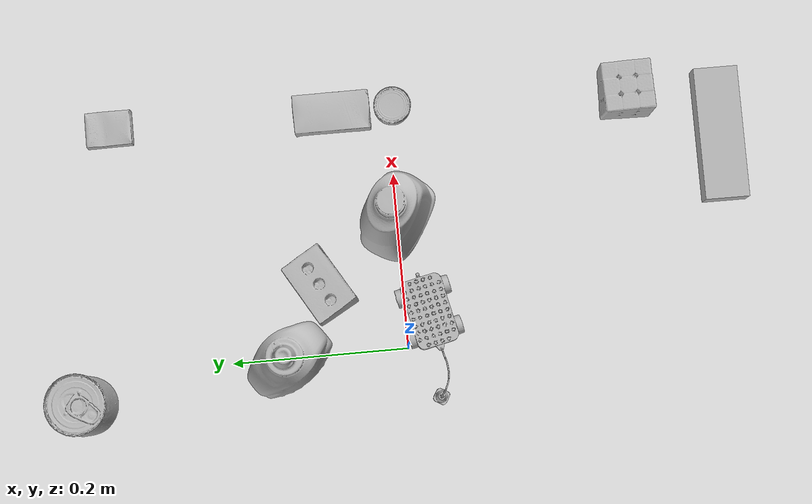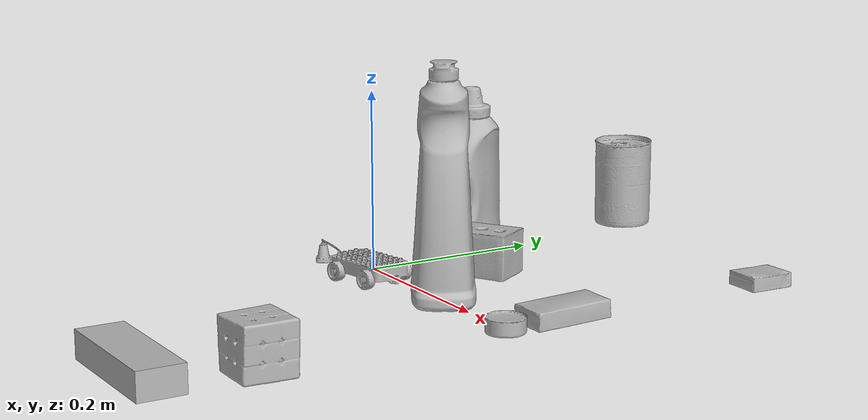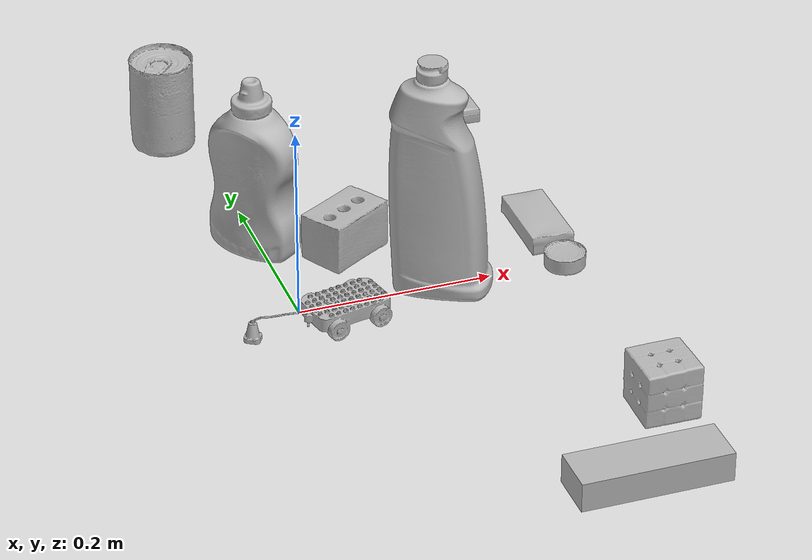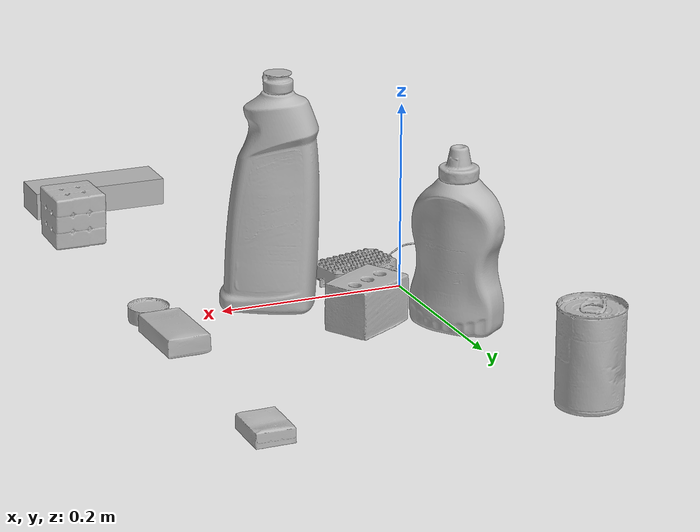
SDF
<sdf version="1.4">
  <world name="default">
    <light name="light1" type="point">
      <pose>0 0 1 0 0 0</pose>
      <diffuse>3 3 3 1</diffuse>
      <specular>3 3 3 1</specular>
    </light>
    <light name="light2" type="point">
      <pose>0 0.5 2 0 0 0</pose>
      <diffuse>1 1 1 1</diffuse>
      <specular>1 1 1 1</specular>
    </light>
    <light name="light3" type="point">
      <pose>0 0.5 2 0 0 0</pose>
      <diffuse>3 3 3 1</diffuse>
      <specular>3 3 3 1</specular>
    </light>
    <scene>
      <ambient>0.7 0.7 0.7</ambient>
    </scene>
    <model name="bottle1">
      <link name="link_bottle1">
        <collision name="default">
          <geometry>
            <mesh>
              <uri>model://bleach_cleanser/collision_meshes/collision.obj</uri>
              <scale>1.0 1.0 1.0</scale>
            </mesh>
          </geometry>
          <surface>
            <friction>
              <ode>
                <mu>0.5</mu>
                <mu2>0.5</mu2>
              </ode>
            </friction>
          <contact>
        <ode>
            <max_vel>0</max_vel>
            <min_depth>0.0001</min_depth>
            <kp>1e8</kp>
        </ode>
    </contact></surface>
        </collision>
        <visual name="default">
          <geometry>
            <mesh>
              <uri>model://bleach_cleanser/visual_meshes/visual.dae</uri>
              <scale>1.0 1.0 1.0</scale>
            </mesh>
          </geometry>
        </visual>
        <inertial>
          <mass>1.2697166204452515</mass>
          <pose>0.00012193183647468686 0.003783883061259985 -0.02442161738872528 -0.07381670616315505 0.00042011510954057825 -0.0068750724928957506</pose>
          <inertia>
            <ixx>0.0061798943</ixx>
            <iyy>0.0057587572</iyy>
            <izz>0.0010566014</izz>
            <ixy>0</ixy>
            <ixz>0</ixz>
            <iyz>0</iyz>
          </inertia>
        </inertial>
      </link>
      <pose>0.1481686681509018 0.0014341393252834678 0.12602798640727997 -0.004693066469135444 0.006419509482709518 1.0716404376568849</pose>
    </model>
    <model name="bottle2">
      <link name="link_bottle2">
        <collision name="default">
          <geometry>
            <mesh>
              <uri>model://mustard_bottle/collision_meshes/collision.obj</uri>
              <scale>1.0 1.0 1.0</scale>
            </mesh>
          </geometry>
          <surface>
            <friction>
              <ode>
                <mu>0.5</mu>
                <mu2>0.5</mu2>
              </ode>
            </friction>
          <contact>
        <ode>
            <max_vel>0</max_vel>
            <min_depth>0.0001</min_depth>
            <kp>1e8</kp>
        </ode>
    </contact></surface>
        </collision>
        <visual name="default">
          <geometry>
            <mesh>
              <uri>model://mustard_bottle/visual_meshes/visual.dae</uri>
              <scale>1.0 1.0 1.0</scale>
            </mesh>
          </geometry>
        </visual>
        <inertial>
          <mass>0.7653017640113831</mass>
          <pose>0.000503245391882956 -0.00015647402324248105 -0.01747579500079155 0.0004182327658992807 0.0009465785893850277 0.024853714910462506</pose>
          <inertia>
            <ixx>0.0021251384</ixx>
            <iyy>0.0018646289</iyy>
            <izz>0.0005600813</izz>
            <ixy>0</ixy>
            <ixz>0</ixz>
            <iyz>0</iyz>
          </inertia>
        </inertial>
      </link>
      <pose>-0.003127101808786392 0.13145193457603455 0.09615200757980347 1.540661075711656e-05 1.6690452412187656e-05 -2.529059461160258</pose>
    </model>
    <model name="toy1">
      <link name="link_toy1">
        <collision name="default">
          <geometry>
            <mesh>
              <uri>model://g_lego_duplo/collision_meshes/collision.obj</uri>
              <scale>0.5 0.5 0.5</scale>
            </mesh>
          </geometry>
          <surface>
            <friction>
              <ode>
                <mu>0.5</mu>
                <mu2>0.5</mu2>
              </ode>
            </friction>
          <contact>
        <ode>
            <max_vel>0</max_vel>
            <min_depth>0.0001</min_depth>
            <kp>1e8</kp>
        </ode>
    </contact></surface>
        </collision>
        <visual name="default">
          <geometry>
            <mesh>
              <uri>model://g_lego_duplo/visual_meshes/visual.dae</uri>
              <scale>0.5 0.5 0.5</scale>
            </mesh>
          </geometry>
        </visual>
        <inertial>
          <mass>0.058442164212465286</mass>
          <pose>-0.025023842230439186 0.0008777315961197019 0.0019403378246352077 0.010962970283690966 0.0381082459421261 -0.09653034831594848</pose>
          <inertia>
            <ixx>2.1170836e-05</ixx>
            <iyy>6.4006235e-05</iyy>
            <izz>8.007422e-05</izz>
            <ixy>0</ixy>
            <ixz>0</ixz>
            <iyz>0</iyz>
          </inertia>
        </inertial>
      </link>
      <pose>0.009738078340888023 -0.031526051461696625 0.014839578419923782 -0.0009016253654616168 -0.005092936925250502 -2.9245266449620253</pose>
    </model>
    <model name="toy2">
      <link name="link_toy2">
        <collision name="default">
          <geometry>
            <mesh>
              <uri>model://foam_brick/collision_meshes/collision.obj</uri>
              <scale>1.0 1.0 1.0</scale>
            </mesh>
          </geometry>
          <surface>
            <friction>
              <ode>
                <mu>0.5</mu>
                <mu2>0.5</mu2>
              </ode>
            </friction>
          <contact>
        <ode>
            <max_vel>0</max_vel>
            <min_depth>0.0001</min_depth>
            <kp>1e8</kp>
        </ode>
    </contact></surface>
        </collision>
        <visual name="default">
          <geometry>
            <mesh>
              <uri>model://foam_brick/visual_meshes/visual.dae</uri>
              <scale>1.0 1.0 1.0</scale>
            </mesh>
          </geometry>
        </visual>
        <inertial>
          <mass>0.20487983524799347</mass>
          <pose>-0.0002522472059354186 0.0003458437859080732 -0.0002532101352699101 -0.2940200921298176 0.01727444945267686 -0.0007449878655710941</pose>
          <inertia>
            <ixx>8.9495355e-05</ixx>
            <iyy>0.0001428839</iyy>
            <izz>0.00014469978</izz>
            <ixy>0</ixy>
            <ixz>0</ixz>
            <iyz>0</iyz>
          </inertia>
        </inertial>
      </link>
      <pose>0.0785360112786293 0.09331780672073364 0.025922808796167374 0.013416822060428279 0.0041529658039680785 -2.6014903796233493</pose>
    </model>
    <model name="can1">
      <link name="link_can1">
        <collision name="default">
          <geometry>
            <mesh>
              <uri>model://tuna_fish_can/collision_meshes/collision.obj</uri>
              <scale>0.5 0.5 0.5</scale>
            </mesh>
          </geometry>
          <surface>
            <friction>
              <ode>
                <mu>0.5</mu>
                <mu2>0.5</mu2>
              </ode>
            </friction>
          <contact>
        <ode>
            <max_vel>0</max_vel>
            <min_depth>0.0001</min_depth>
            <kp>1e8</kp>
        </ode>
    </contact></surface>
        </collision>
        <visual name="default">
          <geometry>
            <mesh>
              <uri>model://tuna_fish_can/visual_meshes/visual.dae</uri>
              <scale>0.5 0.5 0.5</scale>
            </mesh>
          </geometry>
        </visual>
        <inertial>
          <mass>0.012491201050579548</mass>
          <pose>-2.036202567978762e-05 -7.256427124957554e-06 -0.0005269025568850338 -0.0017944782936896576 0.0001716245920406042 0.24054207470378652</pose>
          <inertia>
            <ixx>1.6888293e-06</ixx>
            <iyy>1.6817903e-06</iyy>
            <izz>2.889828e-06</izz>
            <ixy>0</ixy>
            <ixz>0</ixz>
            <iyz>0</iyz>
          </inertia>
        </inertial>
      </link>
      <pose>0.2783103883266449 -0.005455142818391323 0.008520003408193588 -6.441381476845636e-09 -2.00533677970357e-08 -1.1919792792915485</pose>
    </model>
    <model name="can2">
      <link name="link_can2">
        <collision name="default">
          <geometry>
            <mesh>
              <uri>model://tomato_soup_can/collision_meshes/collision.obj</uri>
              <scale>1.0 1.0 1.0</scale>
            </mesh>
          </geometry>
          <surface>
            <friction>
              <ode>
                <mu>0.5</mu>
                <mu2>0.5</mu2>
              </ode>
            </friction>
          <contact>
        <ode>
            <max_vel>0</max_vel>
            <min_depth>0.0001</min_depth>
            <kp>1e8</kp>
        </ode>
    </contact></surface>
        </collision>
        <visual name="default">
          <geometry>
            <mesh>
              <uri>model://tomato_soup_can/visual_meshes/visual.dae</uri>
              <scale>1.0 1.0 1.0</scale>
            </mesh>
          </geometry>
        </visual>
        <inertial>
          <mass>0.1827235370874405</mass>
          <pose>0.00012652271834667772 0.00010805515921674669 -0.0017973986687138677 0.007020070640758328 0.00042299385100205743 -0.009903366123441316</pose>
          <inertia>
            <ixx>0.00020034082</ixx>
            <iyy>0.00019918295</iyy>
            <izz>0.00010383482</izz>
            <ixy>0</ixy>
            <ixz>0</ixz>
            <iyz>0</iyz>
          </inertia>
        </inertial>
      </link>
      <pose>-0.0330539308488369 0.36492547392845154 0.051274001598358154 -5.050659409991122e-07 -8.369603339375162e-07 -0.9254389350162509</pose>
    </model>
    <model name="box1">
      <link name="link_box1">
        <collision name="default">
          <geometry>
            <mesh>
              <uri>model://jenga/collision_meshes/collision.obj</uri>
              <scale>1.0 1.0 1.0</scale>
            </mesh>
          </geometry>
          <surface>
            <friction>
              <ode>
                <mu>0.5</mu>
                <mu2>0.5</mu2>
              </ode>
            </friction>
          <contact>
        <ode>
            <max_vel>0</max_vel>
            <min_depth>0.0001</min_depth>
            <kp>1e8</kp>
        </ode>
    </contact></surface>
        </collision>
        <visual name="default">
          <geometry>
            <mesh>
              <uri>model://jenga/visual_meshes/visual.dae</uri>
              <scale>1.0 1.0 1.0</scale>
            </mesh>
          </geometry>
        </visual>
        <inertial>
          <mass>0.23032541573047638</mass>
          <pose>-2.502855807051674e-07 -0.00010250010382151231 -4.0923401684267446e-05 0.0 -7.342154049184251e-07 0.0</pose>
          <inertia>
            <ixx>6.3736625e-05</ixx>
            <iyy>0.00043187768</iyy>
            <izz>0.00046106614</izz>
            <ixy>0</ixy>
            <ixz>0</ixz>
            <iyz>0</iyz>
          </inertia>
        </inertial>
      </link>
      <pose>0.2124028205871582 -0.374616801738739 0.014999994076788425 1.2005610001972207e-08 -1.5429680025322237e-09 -0.003511865536994285</pose>
    </model>
    <model name="box2">
      <link name="link_box2">
        <collision name="default">
          <geometry>
            <mesh>
              <uri>model://cracker_box/collision_meshes/collision.obj</uri>
              <scale>0.25 0.25 0.25</scale>
            </mesh>
          </geometry>
          <surface>
            <friction>
              <ode>
                <mu>0.5</mu>
                <mu2>0.5</mu2>
              </ode>
            </friction>
          <contact>
        <ode>
            <max_vel>0</max_vel>
            <min_depth>0.0001</min_depth>
            <kp>1e8</kp>
        </ode>
    </contact></surface>
        </collision>
        <visual name="default">
          <geometry>
            <mesh>
              <uri>model://cracker_box/visual_meshes/visual.dae</uri>
              <scale>0.25 0.25 0.25</scale>
            </mesh>
          </geometry>
        </visual>
        <inertial>
          <mass>0.037928901612758636</mass>
          <pose>0.0002366034168517217 6.358561222441494e-05 -0.000425738311605528 -0.00031620771242973385 -0.011106489600347247 0.002546794536796529</pose>
          <inertia>
            <ixx>6.029637e-06</ixx>
            <iyy>9.956116e-06</iyy>
            <izz>1.420829e-05</izz>
            <ixy>0</ixy>
            <ixz>0</ixz>
            <iyz>0</iyz>
          </inertia>
        </inertial>
      </link>
      <pose>0.2795265316963196 0.31967782974243164 0.009120451286435127 -0.011788013977765514 -0.007367190588847574 -1.57062459717852</pose>
    </model>
    <model name="box3">
      <link name="link_box3">
        <collision name="default">
          <geometry>
            <mesh>
              <uri>model://sugar_box/collision_meshes/collision.obj</uri>
              <scale>0.5 0.5 0.5</scale>
            </mesh>
          </geometry>
          <surface>
            <friction>
              <ode>
                <mu>0.5</mu>
                <mu2>0.5</mu2>
              </ode>
            </friction>
          <contact>
        <ode>
            <max_vel>0</max_vel>
            <min_depth>0.0001</min_depth>
            <kp>1e8</kp>
        </ode>
    </contact></surface>
        </collision>
        <visual name="default">
          <geometry>
            <mesh>
              <uri>model://sugar_box/visual_meshes/visual.dae</uri>
              <scale>0.5 0.5 0.5</scale>
            </mesh>
          </geometry>
        </visual>
        <inertial>
          <mass>0.11577744781970978</mass>
          <pose>0.0005171863595023751 1.9245549992774613e-05 -0.00018182402709499002 -0.0004046260967602003 0.0010506636382171825 0.002615378323343388</pose>
          <inertia>
            <ixx>2.4116362e-05</ixx>
            <iyy>7.7949044e-05</iyy>
            <izz>9.3314295e-05</izz>
            <ixy>0</ixy>
            <ixz>0</ixz>
            <iyz>0</iyz>
          </inertia>
        </inertial>
      </link>
      <pose>0.2760776877403259 0.06437937915325165 0.011399302631616592 0.0007752152860178357 -0.023432378839493152 1.575516560270872</pose>
    </model>
    <model name="box4">
      <link name="link_box4">
        <collision name="default">
          <geometry>
            <mesh>
              <uri>model://rubiks_cube/collision_meshes/collision.obj</uri>
              <scale>1.0 1.0 1.0</scale>
            </mesh>
          </geometry>
          <surface>
            <friction>
              <ode>
                <mu>0.5</mu>
                <mu2>0.5</mu2>
              </ode>
            </friction>
          <contact>
        <ode>
            <max_vel>0</max_vel>
            <min_depth>0.0001</min_depth>
            <kp>1e8</kp>
        </ode>
    </contact></surface>
        </collision>
        <visual name="default">
          <geometry>
            <mesh>
              <uri>model://rubiks_cube/visual_meshes/visual.dae</uri>
              <scale>1.0 1.0 1.0</scale>
            </mesh>
          </geometry>
        </visual>
        <inertial>
          <mass>0.277982622385025</mass>
          <pose>2.6721041649580002e-05 5.2569666877388954e-05 -7.264316082000732e-06 -0.05467259342135701 -0.09814005995908277 -0.03445491653702878</pose>
          <inertia>
            <ixx>0.00015360407</ixx>
            <iyy>0.00015288773</iyy>
            <izz>0.00015487692</izz>
            <ixy>0</ixy>
            <ixz>0</ixz>
            <iyz>0</iyz>
          </inertia>
        </inertial>
      </link>
      <pose>0.27055826783180237 -0.27122366428375244 0.028678985312581062 -2.610427833927669e-06 -8.159224871079246e-07 -3.1273703126129364</pose>
    </model>
  <physics type="ode">
      <max_contacts>50</max_contacts>
      <ode>
        <solver>
          <type>quick</type>
          <iters>75</iters>
        </solver>
        <constraints>
          <contact_max_correcting_vel>0</contact_max_correcting_vel>
          <contact_surface_layer>0</contact_surface_layer>
        </constraints>
      </ode>
    </physics></world>
</sdf>
